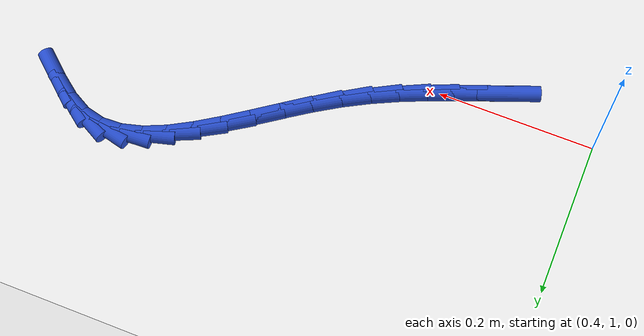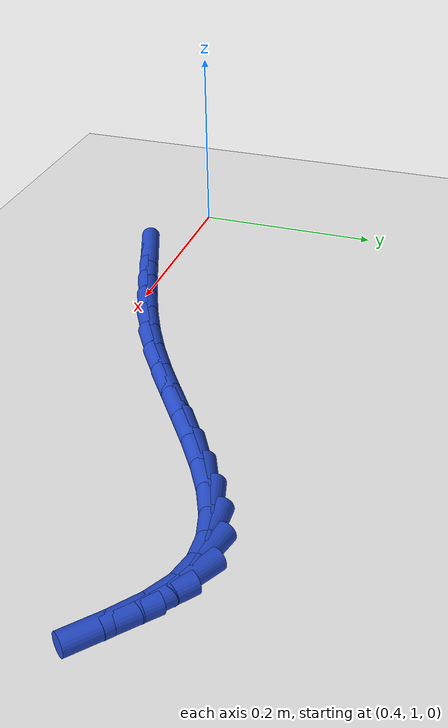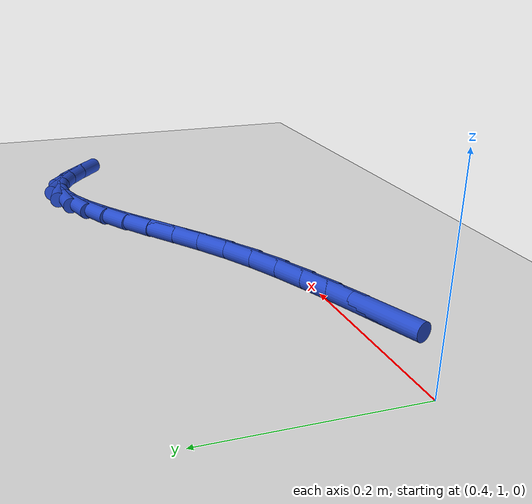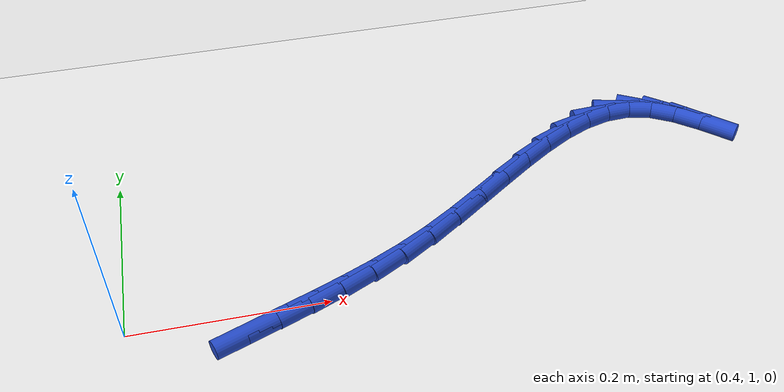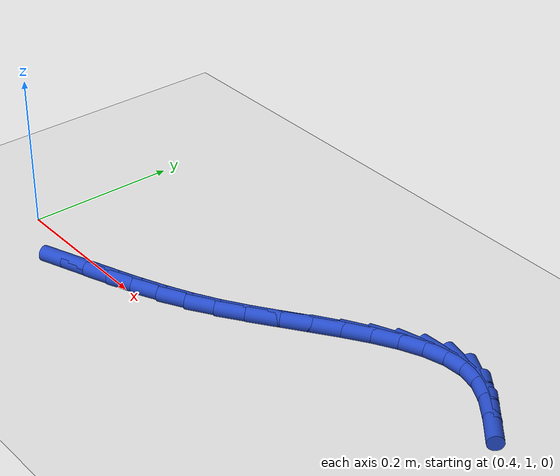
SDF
<sdf version="1.6">
 <world name="default">
  <model name="ground_plane">
   <static>1</static>
   <link name="link">
    <collision name="collision">
     <geometry><plane><normal>0 0 1</normal><size>100 100</size></plane></geometry>
     <surface><friction><ode><mu>100</mu><mu2>50</mu2></ode></friction></surface>
    </collision>
    <visual name="visual">
     <cast_shadows>0</cast_shadows>
     <geometry><plane><normal>0 0 1</normal><size>100 100</size></plane></geometry>
     <material>
      <script><uri>file://media/materials/scripts/gazebo.material</uri><name>Gazebo/WhiteGlow</name></script>
     </material>
    </visual>
   </link>
  </model>
  <model name="line">
   <link name="link_36">
    <pose>0.5204693444126015 0.9722614735015124 0.01 0 1.57 0.3653865229257871</pose>
    <collision name="collision">
     <geometry><cylinder><radius>0.01</radius><length>0.08</length></cylinder></geometry>
    </collision>
    <visual name="visual">
     <material>
      <script><name>Gazebo/Blue</name><uri>file://media/materials/scripts/gazebo.material</uri></script>
     </material>
     <geometry><cylinder><radius>0.01</radius><length>0.08</length></cylinder></geometry>
    </visual>
   </link>
   <link name="link_37">
    <pose>0.551185209303188 0.984012290990907 0.01 0 1.57 0.3660883460650384</pose>
    <collision name="collision">
     <geometry><cylinder><radius>0.01</radius><length>0.08</length></cylinder></geometry>
    </collision>
    <visual name="visual">
     <material>
      <script><name>Gazebo/Blue</name><uri>file://media/materials/scripts/gazebo.material</uri></script>
     </material>
     <geometry><cylinder><radius>0.01</radius><length>0.08</length></cylinder></geometry>
    </visual>
   </link>
   <link name="link_38">
    <pose>0.5825798407782645 0.9960480458762393 0.01 0 1.57 0.3815889988238801</pose>
    <collision name="collision">
     <geometry><cylinder><radius>0.01</radius><length>0.08</length></cylinder></geometry>
    </collision>
    <visual name="visual">
     <material>
      <script><name>Gazebo/Blue</name><uri>file://media/materials/scripts/gazebo.material</uri></script>
     </material>
     <geometry><cylinder><radius>0.01</radius><length>0.08</length></cylinder></geometry>
    </visual>
   </link>
   <link name="link_39">
    <pose>0.6144412948796102 1.0088326577937616 0.01 0 1.57 0.4110112078242422</pose>
    <collision name="collision">
     <geometry><cylinder><radius>0.01</radius><length>0.08</length></cylinder></geometry>
    </collision>
    <visual name="visual">
     <material>
      <script><name>Gazebo/Blue</name><uri>file://media/materials/scripts/gazebo.material</uri></script>
     </material>
     <geometry><cylinder><radius>0.01</radius><length>0.08</length></cylinder></geometry>
    </visual>
   </link>
   <link name="link_40">
    <pose>0.6465576276490039 1.0228300463797264 0.01 0 1.57 0.45350829984810603</pose>
    <collision name="collision">
     <geometry><cylinder><radius>0.01</radius><length>0.08</length></cylinder></geometry>
    </collision>
    <visual name="visual">
     <material>
      <script><name>Gazebo/Blue</name><uri>file://media/materials/scripts/gazebo.material</uri></script>
     </material>
     <geometry><cylinder><radius>0.01</radius><length>0.08</length></cylinder></geometry>
    </visual>
   </link>
   <link name="link_41">
    <pose>0.6787168951282248 1.0385041312703864 0.01 0 1.57 0.508109195391346</pose>
    <collision name="collision">
     <geometry><cylinder><radius>0.01</radius><length>0.08</length></cylinder></geometry>
    </collision>
    <visual name="visual">
     <material>
      <script><name>Gazebo/Blue</name><uri>file://media/materials/scripts/gazebo.material</uri></script>
     </material>
     <geometry><cylinder><radius>0.01</radius><length>0.08</length></cylinder></geometry>
    </visual>
   </link>
   <link name="link_42">
    <pose>0.7107071533592332 1.0563188321001777 0.01 0 1.57 0.567286772332727</pose>
    <collision name="collision">
     <geometry><cylinder><radius>0.01</radius><length>0.08</length></cylinder></geometry>
    </collision>
    <visual name="visual">
     <material>
      <script><name>Gazebo/Blue</name><uri>file://media/materials/scripts/gazebo.material</uri></script>
     </material>
     <geometry><cylinder><radius>0.01</radius><length>0.08</length></cylinder></geometry>
    </visual>
   </link>
   <link name="link_43">
    <pose>0.7423427171915445 1.076475344786256 0.01 0 1.57 0.6067329364674294</pose>
    <collision name="collision">
     <geometry><cylinder><radius>0.01</radius><length>0.08</length></cylinder></geometry>
    </collision>
    <visual name="visual">
     <material>
      <script><name>Gazebo/Blue</name><uri>file://media/materials/scripts/gazebo.material</uri></script>
     </material>
     <geometry><cylinder><radius>0.01</radius><length>0.08</length></cylinder></geometry>
    </visual>
   </link>
   <link name="link_44">
    <pose>0.7735423371002607 1.0981299695202624 0.01 0 1.57 0.6227193008463253</pose>
    <collision name="collision">
     <geometry><cylinder><radius>0.01</radius><length>0.08</length></cylinder></geometry>
    </collision>
    <visual name="visual">
     <material>
      <script><name>Gazebo/Blue</name><uri>file://media/materials/scripts/gazebo.material</uri></script>
     </material>
     <geometry><cylinder><radius>0.01</radius><length>0.08</length></cylinder></geometry>
    </visual>
   </link>
   <link name="link_45">
    <pose>0.804250723420461 1.1201792737965626 0.01 0 1.57 0.6157646337579946</pose>
    <collision name="collision">
     <geometry><cylinder><radius>0.01</radius><length>0.08</length></cylinder></geometry>
    </collision>
    <visual name="visual">
     <material>
      <script><name>Gazebo/Blue</name><uri>file://media/materials/scripts/gazebo.material</uri></script>
     </material>
     <geometry><cylinder><radius>0.01</radius><length>0.08</length></cylinder></geometry>
    </visual>
   </link>
   <link name="link_46">
    <pose>0.834412586487225 1.1415198251095215 0.01 0 1.57 0.5838143093946124</pose>
    <collision name="collision">
     <geometry><cylinder><radius>0.01</radius><length>0.08</length></cylinder></geometry>
    </collision>
    <visual name="visual">
     <material>
      <script><name>Gazebo/Blue</name><uri>file://media/materials/scripts/gazebo.material</uri></script>
     </material>
     <geometry><cylinder><radius>0.01</radius><length>0.08</length></cylinder></geometry>
    </visual>
   </link>
   <link name="link_47">
    <pose>0.8639726366356327 1.1610481909535053 0.01 0 1.57 0.5216666310306911</pose>
    <collision name="collision">
     <geometry><cylinder><radius>0.01</radius><length>0.08</length></cylinder></geometry>
    </collision>
    <visual name="visual">
     <material>
      <script><name>Gazebo/Blue</name><uri>file://media/materials/scripts/gazebo.material</uri></script>
     </material>
     <geometry><cylinder><radius>0.01</radius><length>0.08</length></cylinder></geometry>
    </visual>
   </link>
   <link name="link_48">
    <pose>0.8928755842007632 1.1776609388228794 0.01 0 1.57 0.4201351287948398</pose>
    <collision name="collision">
     <geometry><cylinder><radius>0.01</radius><length>0.08</length></cylinder></geometry>
    </collision>
    <visual name="visual">
     <material>
      <script><name>Gazebo/Blue</name><uri>file://media/materials/scripts/gazebo.material</uri></script>
     </material>
     <geometry><cylinder><radius>0.01</radius><length>0.08</length></cylinder></geometry>
    </visual>
   </link>
   <link name="link_49">
    <pose>0.9210661395176958 1.1902546362120083 0.01 0 1.57 0.2659889485143995</pose>
    <collision name="collision">
     <geometry><cylinder><radius>0.01</radius><length>0.08</length></cylinder></geometry>
    </collision>
    <visual name="visual">
     <material>
      <script><name>Gazebo/Blue</name><uri>file://media/materials/scripts/gazebo.material</uri></script>
     </material>
     <geometry><cylinder><radius>0.01</radius><length>0.08</length></cylinder></geometry>
    </visual>
   </link>
   <link name="link_50">
    <pose>0.94848901292151 1.1977258506152586 0.01 0 1.57 0.046781763627913406</pose>
    <collision name="collision">
     <geometry><cylinder><radius>0.01</radius><length>0.08</length></cylinder></geometry>
    </collision>
    <visual name="visual">
     <material>
      <script><name>Gazebo/Blue</name><uri>file://media/materials/scripts/gazebo.material</uri></script>
     </material>
     <geometry><cylinder><radius>0.01</radius><length>0.08</length></cylinder></geometry>
    </visual>
   </link>
   <link name="link_51">
    <pose>0.975088914747286 1.1989711495269955 0.01 0 1.57 -0.2321958898249655</pose>
    <collision name="collision">
     <geometry><cylinder><radius>0.01</radius><length>0.08</length></cylinder></geometry>
    </collision>
    <visual name="visual">
     <material>
      <script><name>Gazebo/Blue</name><uri>file://media/materials/scripts/gazebo.material</uri></script>
     </material>
     <geometry><cylinder><radius>0.01</radius><length>0.08</length></cylinder></geometry>
    </visual>
   </link>
   <link name="link_52">
    <pose>1.0008108881434359 1.1928889102725122 0.01 0 1.57 -0.4996764793595446</pose>
    <collision name="collision">
     <geometry><cylinder><radius>0.01</radius><length>0.08</length></cylinder></geometry>
    </collision>
    <visual name="visual">
     <material>
      <script><name>Gazebo/Blue</name><uri>file://media/materials/scripts/gazebo.material</uri></script>
     </material>
     <geometry><cylinder><radius>0.01</radius><length>0.08</length></cylinder></geometry>
    </visual>
   </link>
   <link name="link_53">
    <pose>1.025763661771811 1.1792676280756986 0.01 0 1.57 -0.6565288735923052</pose>
    <collision name="collision">
     <geometry><cylinder><radius>0.01</radius><length>0.08</length></cylinder></geometry>
    </collision>
    <visual name="visual">
     <material>
      <script><name>Gazebo/Blue</name><uri>file://media/materials/scripts/gazebo.material</uri></script>
     </material>
     <geometry><cylinder><radius>0.01</radius><length>0.08</length></cylinder></geometry>
    </visual>
   </link>
   <link name="link_54">
    <pose>1.0504833121993074 1.1602197058246835 0.01 0 1.57 -0.7195655072326672</pose>
    <collision name="collision">
     <geometry><cylinder><radius>0.01</radius><length>0.08</length></cylinder></geometry>
    </collision>
    <visual name="visual">
     <material>
      <script><name>Gazebo/Blue</name><uri>file://media/materials/scripts/gazebo.material</uri></script>
     </material>
     <geometry><cylinder><radius>0.01</radius><length>0.08</length></cylinder></geometry>
    </visual>
   </link>
  </model>
 </world>
</sdf>
